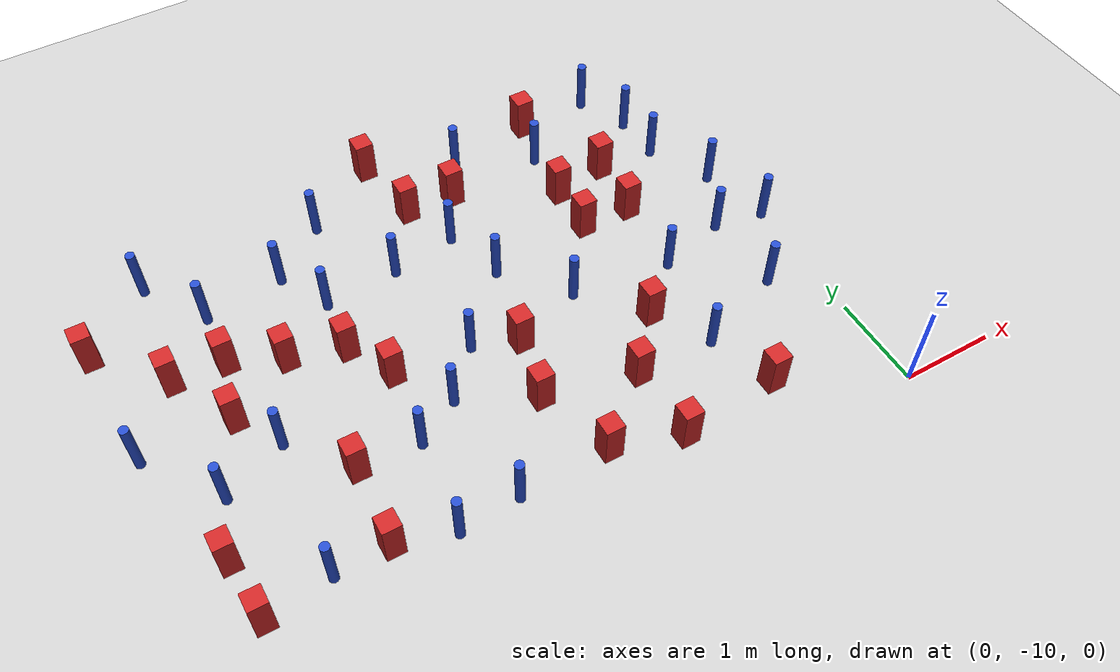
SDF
<sdf version="1.6">
 <world name="default">
  <model name="ground_plane">
   <static>1</static>
   <link name="link">
    <collision name="collision">
     <geometry><plane><normal>0 0 1</normal><size>100 100</size></plane></geometry>
     <surface><friction><ode><mu>100</mu><mu2>50</mu2></ode></friction></surface>
    </collision>
    <visual name="visual">
     <cast_shadows>0</cast_shadows>
     <geometry><plane><normal>0 0 1</normal><size>100 100</size></plane></geometry>
     <material>
      <ambient>1.0 1.0 1.0 1.0</ambient>
      <diffuse>0.8 0.8 0.8 1.0</diffuse>
      <specular>0.01 0.01 0.01 1.000000</specular>
     </material>
    </visual>
   </link>
  </model>
  <model name="square_post_obstacle0">
   <static>true</static>
   <pose>-3.1302615342 -7.7388249968 1.91545236811e-07 -7.35059704564e-06 1.12565212e-07 2.39332434364e-05</pose>
   <link name="link">
    <pose>0 0 0.25 0 -0 0</pose>
    <inertial>
     <mass>100</mass>
     <inertia>
      <ixx>0.166667</ixx>
      <ixy>0</ixy>
      <ixz>0</ixz>
      <iyy>0.166667</iyy>
      <iyz>0</iyz>
      <izz>0.166667</izz>
     </inertia>
    </inertial>
    <collision name="collision"><geometry><box><size>.2 .2 .5</size></box></geometry></collision>
    <visual name="visual">
     <geometry><box><size>.2 .2 .5</size></box></geometry>
     <material>
      <script><name>Gazebo/Red</name><uri>file://media/materials/scripts/gazebo.material</uri></script>
     </material>
    </visual>
   </link>
  </model>
  <model name="square_post_obstacle2">
   <static>true</static>
   <pose>-1.81622782125 -8.08868260093 1.91545236811e-07 -7.35059704564e-06 1.12565212e-07 2.39332434364e-05</pose>
   <link name="link">
    <pose>0 0 0.25 0 -0 0</pose>
    <inertial>
     <mass>100</mass>
     <inertia>
      <ixx>0.166667</ixx>
      <ixy>0</ixy>
      <ixz>0</ixz>
      <iyy>0.166667</iyy>
      <iyz>0</iyz>
      <izz>0.166667</izz>
     </inertia>
    </inertial>
    <collision name="collision"><geometry><box><size>.2 .2 .5</size></box></geometry></collision>
    <visual name="visual">
     <geometry><box><size>.2 .2 .5</size></box></geometry>
     <material>
      <script><name>Gazebo/Red</name><uri>file://media/materials/scripts/gazebo.material</uri></script>
     </material>
    </visual>
   </link>
  </model>
  <model name="square_post_obstacle6">
   <static>true</static>
   <pose>-1.77363090694 -6.15652895822 1.91545236811e-07 -7.35059704564e-06 1.12565212e-07 2.39332434364e-05</pose>
   <link name="link">
    <pose>0 0 0.25 0 -0 0</pose>
    <inertial>
     <mass>100</mass>
     <inertia>
      <ixx>0.166667</ixx>
      <ixy>0</ixy>
      <ixz>0</ixz>
      <iyy>0.166667</iyy>
      <iyz>0</iyz>
      <izz>0.166667</izz>
     </inertia>
    </inertial>
    <collision name="collision"><geometry><box><size>.2 .2 .5</size></box></geometry></collision>
    <visual name="visual">
     <geometry><box><size>.2 .2 .5</size></box></geometry>
     <material>
      <script><name>Gazebo/Red</name><uri>file://media/materials/scripts/gazebo.material</uri></script>
     </material>
    </visual>
   </link>
  </model>
  <model name="pole_obstacle10">
   <static>true</static>
   <pose>-6.90614893159 -7.19268532461 7.38925637345e-09 -8.47170692796e-08 1.24976764786e-08 -1.74513093032e-07</pose>
   <link name="link">
    <pose>0 0 0.3 0 -0 0</pose>
    <inertial>
     <mass>1</mass>
     <inertia><ixx>0.145833</ixx><ixy>0</ixy><ixz>0</ixz><iyy>0.145833</iyy><iyz>0</iyz><izz>0.125</izz></inertia>
    </inertial>
    <collision name="collision">
     <geometry><cylinder><radius>0.05</radius><length>.6</length></cylinder></geometry>
    </collision>
    <visual name="visual">
     <geometry><cylinder><radius>0.05</radius><length>.6</length></cylinder></geometry>
     <material>
      <script><name>Gazebo/Blue</name><uri>file://media/materials/scripts/gazebo.material</uri></script>
     </material>
    </visual>
   </link>
  </model>
  <model name="square_post_obstacle9">
   <static>true</static>
   <pose>-3.29297835384 -8.43089874461 1.91545236811e-07 -7.35059704564e-06 1.12565212e-07 2.39332434364e-05</pose>
   <link name="link">
    <pose>0 0 0.25 0 -0 0</pose>
    <inertial>
     <mass>100</mass>
     <inertia>
      <ixx>0.166667</ixx>
      <ixy>0</ixy>
      <ixz>0</ixz>
      <iyy>0.166667</iyy>
      <iyz>0</iyz>
      <izz>0.166667</izz>
     </inertia>
    </inertial>
    <collision name="collision"><geometry><box><size>.2 .2 .5</size></box></geometry></collision>
    <visual name="visual">
     <geometry><box><size>.2 .2 .5</size></box></geometry>
     <material>
      <script><name>Gazebo/Red</name><uri>file://media/materials/scripts/gazebo.material</uri></script>
     </material>
    </visual>
   </link>
  </model>
  <model name="pole_obstacle15">
   <static>true</static>
   <pose>-4.03835698467 -8.03222469664 7.38925637345e-09 -8.47170692796e-08 1.24976764752e-08 -1.74513093036e-07</pose>
   <link name="link">
    <pose>0 0 0.3 0 -0 0</pose>
    <inertial>
     <mass>1</mass>
     <inertia><ixx>0.145833</ixx><ixy>0</ixy><ixz>0</ixz><iyy>0.145833</iyy><iyz>0</iyz><izz>0.125</izz></inertia>
    </inertial>
    <collision name="collision">
     <geometry><cylinder><radius>0.05</radius><length>.6</length></cylinder></geometry>
    </collision>
    <visual name="visual">
     <geometry><cylinder><radius>0.05</radius><length>.6</length></cylinder></geometry>
     <material>
      <script><name>Gazebo/Blue</name><uri>file://media/materials/scripts/gazebo.material</uri></script>
     </material>
    </visual>
   </link>
  </model>
  <model name="pole_obstacle30">
   <static>true</static>
   <pose>-4.31219530646 -5.29686119449 7.38925637345e-09 -8.47170692796e-08 1.24976764786e-08 -1.74513093032e-07</pose>
   <link name="link">
    <pose>0 0 0.3 0 -0 0</pose>
    <inertial>
     <mass>1</mass>
     <inertia><ixx>0.145833</ixx><ixy>0</ixy><ixz>0</ixz><iyy>0.145833</iyy><iyz>0</iyz><izz>0.125</izz></inertia>
    </inertial>
    <collision name="collision">
     <geometry><cylinder><radius>0.05</radius><length>.6</length></cylinder></geometry>
    </collision>
    <visual name="visual">
     <geometry><cylinder><radius>0.05</radius><length>.6</length></cylinder></geometry>
     <material>
      <script><name>Gazebo/Blue</name><uri>file://media/materials/scripts/gazebo.material</uri></script>
     </material>
    </visual>
   </link>
  </model>
  <model name="square_post_obstacle27">
   <static>true</static>
   <pose>-2.31936967919 -8.66538422785 1.91545236811e-07 -7.35059704564e-06 1.12565212e-07 2.39332434364e-05</pose>
   <link name="link">
    <pose>0 0 0.25 0 -0 0</pose>
    <inertial>
     <mass>100</mass>
     <inertia>
      <ixx>0.166667</ixx>
      <ixy>0</ixy>
      <ixz>0</ixz>
      <iyy>0.166667</iyy>
      <iyz>0</iyz>
      <izz>0.166667</izz>
     </inertia>
    </inertial>
    <collision name="collision"><geometry><box><size>.2 .2 .5</size></box></geometry></collision>
    <visual name="visual">
     <geometry><box><size>.2 .2 .5</size></box></geometry>
     <material>
      <script><name>Gazebo/Red</name><uri>file://media/materials/scripts/gazebo.material</uri></script>
     </material>
    </visual>
   </link>
  </model>
  <model name="square_post_obstacle33">
   <static>true</static>
   <pose>-5.22461237389 -9.14606435724 1.91545236811e-07 -7.35059704564e-06 1.12565212e-07 2.39332434364e-05</pose>
   <link name="link">
    <pose>0 0 0.25 0 -0 0</pose>
    <inertial>
     <mass>100</mass>
     <inertia>
      <ixx>0.166667</ixx>
      <ixy>0</ixy>
      <ixz>0</ixz>
      <iyy>0.166667</iyy>
      <iyz>0</iyz>
      <izz>0.166667</izz>
     </inertia>
    </inertial>
    <collision name="collision"><geometry><box><size>.2 .2 .5</size></box></geometry></collision>
    <visual name="visual">
     <geometry><box><size>.2 .2 .5</size></box></geometry>
     <material>
      <script><name>Gazebo/Red</name><uri>file://media/materials/scripts/gazebo.material</uri></script>
     </material>
    </visual>
   </link>
  </model>
  <model name="pole_obstacle56">
   <static>true</static>
   <pose>-0.489232275687 -8.31665835181 7.38925637345e-09 -8.47170692799e-08 1.24976764918e-08 -1.74513093025e-07</pose>
   <link name="link">
    <pose>0 0 0.3 0 -0 0</pose>
    <inertial>
     <mass>1</mass>
     <inertia><ixx>0.145833</ixx><ixy>0</ixy><ixz>0</ixz><iyy>0.145833</iyy><iyz>0</iyz><izz>0.125</izz></inertia>
    </inertial>
    <collision name="collision">
     <geometry><cylinder><radius>0.05</radius><length>.6</length></cylinder></geometry>
    </collision>
    <visual name="visual">
     <geometry><cylinder><radius>0.05</radius><length>.6</length></cylinder></geometry>
     <material>
      <script><name>Gazebo/Blue</name><uri>file://media/materials/scripts/gazebo.material</uri></script>
     </material>
    </visual>
   </link>
  </model>
  <model name="pole_obstacle60">
   <static>true</static>
   <pose>-6.33742659952 -7.95636788864 7.38925637345e-09 -8.47170692798e-08 1.24976764934e-08 -1.74513093022e-07</pose>
   <link name="link">
    <pose>0 0 0.3 0 -0 0</pose>
    <inertial>
     <mass>1</mass>
     <inertia><ixx>0.145833</ixx><ixy>0</ixy><ixz>0</ixz><iyy>0.145833</iyy><iyz>0</iyz><izz>0.125</izz></inertia>
    </inertial>
    <collision name="collision">
     <geometry><cylinder><radius>0.05</radius><length>.6</length></cylinder></geometry>
    </collision>
    <visual name="visual">
     <geometry><cylinder><radius>0.05</radius><length>.6</length></cylinder></geometry>
     <material>
      <script><name>Gazebo/Blue</name><uri>file://media/materials/scripts/gazebo.material</uri></script>
     </material>
    </visual>
   </link>
  </model>
  <model name="square_post_obstacle46">
   <static>true</static>
   <pose>-3.02508521438 -9.25163519728 1.91545236811e-07 -7.35059704564e-06 1.12565212e-07 2.39332434364e-05</pose>
   <link name="link">
    <pose>0 0 0.25 0 -0 0</pose>
    <inertial>
     <mass>100</mass>
     <inertia>
      <ixx>0.166667</ixx>
      <ixy>0</ixy>
      <ixz>0</ixz>
      <iyy>0.166667</iyy>
      <iyz>0</iyz>
      <izz>0.166667</izz>
     </inertia>
    </inertial>
    <collision name="collision"><geometry><box><size>.2 .2 .5</size></box></geometry></collision>
    <visual name="visual">
     <geometry><box><size>.2 .2 .5</size></box></geometry>
     <material>
      <script><name>Gazebo/Red</name><uri>file://media/materials/scripts/gazebo.material</uri></script>
     </material>
    </visual>
   </link>
  </model>
  <model name="pole_obstacle68">
   <static>true</static>
   <pose>-1.27349486807 -7.60801841831 7.38925637345e-09 -8.47170692799e-08 1.24976765033e-08 -1.74513093018e-07</pose>
   <link name="link">
    <pose>0 0 0.3 0 -0 0</pose>
    <inertial>
     <mass>1</mass>
     <inertia><ixx>0.145833</ixx><ixy>0</ixy><ixz>0</ixz><iyy>0.145833</iyy><iyz>0</iyz><izz>0.125</izz></inertia>
    </inertial>
    <collision name="collision">
     <geometry><cylinder><radius>0.05</radius><length>.6</length></cylinder></geometry>
    </collision>
    <visual name="visual">
     <geometry><cylinder><radius>0.05</radius><length>.6</length></cylinder></geometry>
     <material>
      <script><name>Gazebo/Blue</name><uri>file://media/materials/scripts/gazebo.material</uri></script>
     </material>
    </visual>
   </link>
  </model>
  <model name="square_post_obstacle57">
   <static>true</static>
   <pose>-5.26083986196 -6.79283763205 1.91545236811e-07 -7.35059704564e-06 1.12565212e-07 2.39332434364e-05</pose>
   <link name="link">
    <pose>0 0 0.25 0 -0 0</pose>
    <inertial>
     <mass>100</mass>
     <inertia>
      <ixx>0.166667</ixx>
      <ixy>0</ixy>
      <ixz>0</ixz>
      <iyy>0.166667</iyy>
      <iyz>0</iyz>
      <izz>0.166667</izz>
     </inertia>
    </inertial>
    <collision name="collision"><geometry><box><size>.2 .2 .5</size></box></geometry></collision>
    <visual name="visual">
     <geometry><box><size>.2 .2 .5</size></box></geometry>
     <material>
      <script><name>Gazebo/Red</name><uri>file://media/materials/scripts/gazebo.material</uri></script>
     </material>
    </visual>
   </link>
  </model>
  <model name="square_post_obstacle69">
   <static>true</static>
   <pose>-6.95726311566 -5.82007495776 1.91545236811e-07 -7.35059704564e-06 1.12565212e-07 2.39332434364e-05</pose>
   <link name="link">
    <pose>0 0 0.25 0 -0 0</pose>
    <inertial>
     <mass>100</mass>
     <inertia>
      <ixx>0.166667</ixx>
      <ixy>0</ixy>
      <ixz>0</ixz>
      <iyy>0.166667</iyy>
      <iyz>0</iyz>
      <izz>0.166667</izz>
     </inertia>
    </inertial>
    <collision name="collision"><geometry><box><size>.2 .2 .5</size></box></geometry></collision>
    <visual name="visual">
     <geometry><box><size>.2 .2 .5</size></box></geometry>
     <material>
      <script><name>Gazebo/Red</name><uri>file://media/materials/scripts/gazebo.material</uri></script>
     </material>
    </visual>
   </link>
  </model>
  <model name="square_post_obstacle70">
   <static>true</static>
   <pose>-1.78889335081 -6.71604998827 1.91545236811e-07 -7.35059704564e-06 1.12565212e-07 2.39332434364e-05</pose>
   <link name="link">
    <pose>0 0 0.25 0 -0 0</pose>
    <inertial>
     <mass>100</mass>
     <inertia>
      <ixx>0.166667</ixx>
      <ixy>0</ixy>
      <ixz>0</ixz>
      <iyy>0.166667</iyy>
      <iyz>0</iyz>
      <izz>0.166667</izz>
     </inertia>
    </inertial>
    <collision name="collision"><geometry><box><size>.2 .2 .5</size></box></geometry></collision>
    <visual name="visual">
     <geometry><box><size>.2 .2 .5</size></box></geometry>
     <material>
      <script><name>Gazebo/Red</name><uri>file://media/materials/scripts/gazebo.material</uri></script>
     </material>
    </visual>
   </link>
  </model>
  <model name="square_post_obstacle72">
   <static>true</static>
   <pose>-5.96192441191 -7.20777350789 1.91545236811e-07 -7.35059704564e-06 1.12565212e-07 2.39332434364e-05</pose>
   <link name="link">
    <pose>0 0 0.25 0 -0 0</pose>
    <inertial>
     <mass>100</mass>
     <inertia>
      <ixx>0.166667</ixx>
      <ixy>0</ixy>
      <ixz>0</ixz>
      <iyy>0.166667</iyy>
      <iyz>0</iyz>
      <izz>0.166667</izz>
     </inertia>
    </inertial>
    <collision name="collision"><geometry><box><size>.2 .2 .5</size></box></geometry></collision>
    <visual name="visual">
     <geometry><box><size>.2 .2 .5</size></box></geometry>
     <material>
      <script><name>Gazebo/Red</name><uri>file://media/materials/scripts/gazebo.material</uri></script>
     </material>
    </visual>
   </link>
  </model>
  <model name="square_post_obstacle76">
   <static>true</static>
   <pose>-2.81576323974 -5.60928701518 1.91545236811e-07 -7.35059704564e-06 1.12565212e-07 2.39332434364e-05</pose>
   <link name="link">
    <pose>0 0 0.25 0 -0 0</pose>
    <inertial>
     <mass>100</mass>
     <inertia>
      <ixx>0.166667</ixx>
      <ixy>0</ixy>
      <ixz>0</ixz>
      <iyy>0.166667</iyy>
      <iyz>0</iyz>
      <izz>0.166667</izz>
     </inertia>
    </inertial>
    <collision name="collision"><geometry><box><size>.2 .2 .5</size></box></geometry></collision>
    <visual name="visual">
     <geometry><box><size>.2 .2 .5</size></box></geometry>
     <material>
      <script><name>Gazebo/Red</name><uri>file://media/materials/scripts/gazebo.material</uri></script>
     </material>
    </visual>
   </link>
  </model>
  <model name="pole_obstacle91">
   <static>true</static>
   <pose>-6.21507940638 -5.20797603912 7.38925637345e-09 -8.47170692796e-08 1.24976764786e-08 -1.74513093032e-07</pose>
   <link name="link">
    <pose>0 0 0.3 0 -0 0</pose>
    <inertial>
     <mass>1</mass>
     <inertia><ixx>0.145833</ixx><ixy>0</ixy><ixz>0</ixz><iyy>0.145833</iyy><iyz>0</iyz><izz>0.125</izz></inertia>
    </inertial>
    <collision name="collision">
     <geometry><cylinder><radius>0.05</radius><length>.6</length></cylinder></geometry>
    </collision>
    <visual name="visual">
     <geometry><cylinder><radius>0.05</radius><length>.6</length></cylinder></geometry>
     <material>
      <script><name>Gazebo/Blue</name><uri>file://media/materials/scripts/gazebo.material</uri></script>
     </material>
    </visual>
   </link>
  </model>
  <model name="pole_obstacle92">
   <static>true</static>
   <pose>0.0188790153939 -7.50853557784 7.38925637345e-09 -8.471706928e-08 1.24976765089e-08 -1.74513093016e-07</pose>
   <link name="link">
    <pose>0 0 0.3 0 -0 0</pose>
    <inertial>
     <mass>1</mass>
     <inertia><ixx>0.145833</ixx><ixy>0</ixy><ixz>0</ixz><iyy>0.145833</iyy><iyz>0</iyz><izz>0.125</izz></inertia>
    </inertial>
    <collision name="collision">
     <geometry><cylinder><radius>0.05</radius><length>.6</length></cylinder></geometry>
    </collision>
    <visual name="visual">
     <geometry><cylinder><radius>0.05</radius><length>.6</length></cylinder></geometry>
     <material>
      <script><name>Gazebo/Blue</name><uri>file://media/materials/scripts/gazebo.material</uri></script>
     </material>
    </visual>
   </link>
  </model>
  <model name="pole_obstacle100">
   <static>true</static>
   <pose>-3.10965192377 -6.14967714935 7.38925637345e-09 -8.47170692794e-08 1.24976764468e-08 -1.7451309304e-07</pose>
   <link name="link">
    <pose>0 0 0.3 0 -0 0</pose>
    <inertial>
     <mass>1</mass>
     <inertia><ixx>0.145833</ixx><ixy>0</ixy><ixz>0</ixz><iyy>0.145833</iyy><iyz>0</iyz><izz>0.125</izz></inertia>
    </inertial>
    <collision name="collision">
     <geometry><cylinder><radius>0.05</radius><length>.6</length></cylinder></geometry>
    </collision>
    <visual name="visual">
     <geometry><cylinder><radius>0.05</radius><length>.6</length></cylinder></geometry>
     <material>
      <script><name>Gazebo/Blue</name><uri>file://media/materials/scripts/gazebo.material</uri></script>
     </material>
    </visual>
   </link>
  </model>
  <model name="square_post_obstacle102">
   <static>true</static>
   <pose>-5.17163753735 -8.28237469445 1.91545236811e-07 -7.35059704564e-06 1.12565212e-07 2.39332434364e-05</pose>
   <link name="link">
    <pose>0 0 0.25 0 -0 0</pose>
    <inertial>
     <mass>100</mass>
     <inertia>
      <ixx>0.166667</ixx>
      <ixy>0</ixy>
      <ixz>0</ixz>
      <iyy>0.166667</iyy>
      <iyz>0</iyz>
      <izz>0.166667</izz>
     </inertia>
    </inertial>
    <collision name="collision"><geometry><box><size>.2 .2 .5</size></box></geometry></collision>
    <visual name="visual">
     <geometry><box><size>.2 .2 .5</size></box></geometry>
     <material>
      <script><name>Gazebo/Red</name><uri>file://media/materials/scripts/gazebo.material</uri></script>
     </material>
    </visual>
   </link>
  </model>
  <model name="square_post_obstacle107">
   <static>true</static>
   <pose>-4.68585353089 -6.96801714703 1.91545236811e-07 -7.35059704564e-06 1.12565212e-07 2.39332434364e-05</pose>
   <link name="link">
    <pose>0 0 0.25 0 -0 0</pose>
    <inertial>
     <mass>100</mass>
     <inertia>
      <ixx>0.166667</ixx>
      <ixy>0</ixy>
      <ixz>0</ixz>
      <iyy>0.166667</iyy>
      <iyz>0</iyz>
      <izz>0.166667</izz>
     </inertia>
    </inertial>
    <collision name="collision"><geometry><box><size>.2 .2 .5</size></box></geometry></collision>
    <visual name="visual">
     <geometry><box><size>.2 .2 .5</size></box></geometry>
     <material>
      <script><name>Gazebo/Red</name><uri>file://media/materials/scripts/gazebo.material</uri></script>
     </material>
    </visual>
   </link>
  </model>
  <model name="square_post_obstacle109">
   <static>true</static>
   <pose>-1.24037652575 -6.7336751906 1.91545236811e-07 -7.35059704564e-06 1.12565212e-07 2.39332434364e-05</pose>
   <link name="link">
    <pose>0 0 0.25 0 -0 0</pose>
    <inertial>
     <mass>100</mass>
     <inertia>
      <ixx>0.166667</ixx>
      <ixy>0</ixy>
      <ixz>0</ixz>
      <iyy>0.166667</iyy>
      <iyz>0</iyz>
      <izz>0.166667</izz>
     </inertia>
    </inertial>
    <collision name="collision"><geometry><box><size>.2 .2 .5</size></box></geometry></collision>
    <visual name="visual">
     <geometry><box><size>.2 .2 .5</size></box></geometry>
     <material>
      <script><name>Gazebo/Red</name><uri>file://media/materials/scripts/gazebo.material</uri></script>
     </material>
    </visual>
   </link>
  </model>
  <model name="pole_obstacle116">
   <static>true</static>
   <pose>-2.55515823076 -5.17450402332 7.38925637345e-09 -8.47170692798e-08 1.24976765033e-08 -1.74513093019e-07</pose>
   <link name="link">
    <pose>0 0 0.3 0 -0 0</pose>
    <inertial>
     <mass>1</mass>
     <inertia><ixx>0.145833</ixx><ixy>0</ixy><ixz>0</ixz><iyy>0.145833</iyy><iyz>0</iyz><izz>0.125</izz></inertia>
    </inertial>
    <collision name="collision">
     <geometry><cylinder><radius>0.05</radius><length>.6</length></cylinder></geometry>
    </collision>
    <visual name="visual">
     <geometry><cylinder><radius>0.05</radius><length>.6</length></cylinder></geometry>
     <material>
      <script><name>Gazebo/Blue</name><uri>file://media/materials/scripts/gazebo.material</uri></script>
     </material>
    </visual>
   </link>
  </model>
  <model name="square_post_obstacle117">
   <static>true</static>
   <pose>-2.31032814289 -9.48010830313 1.91545236811e-07 -7.35059704564e-06 1.12565212e-07 2.39332434364e-05</pose>
   <link name="link">
    <pose>0 0 0.25 0 -0 0</pose>
    <inertial>
     <mass>100</mass>
     <inertia>
      <ixx>0.166667</ixx>
      <ixy>0</ixy>
      <ixz>0</ixz>
      <iyy>0.166667</iyy>
      <iyz>0</iyz>
      <izz>0.166667</izz>
     </inertia>
    </inertial>
    <collision name="collision"><geometry><box><size>.2 .2 .5</size></box></geometry></collision>
    <visual name="visual">
     <geometry><box><size>.2 .2 .5</size></box></geometry>
     <material>
      <script><name>Gazebo/Red</name><uri>file://media/materials/scripts/gazebo.material</uri></script>
     </material>
    </visual>
   </link>
  </model>
  <model name="square_post_obstacle119">
   <static>true</static>
   <pose>-6.48217700357 -9.24167593766 1.91545236811e-07 -7.35059704564e-06 1.12565212e-07 2.39332434364e-05</pose>
   <link name="link">
    <pose>0 0 0.25 0 -0 0</pose>
    <inertial>
     <mass>100</mass>
     <inertia>
      <ixx>0.166667</ixx>
      <ixy>0</ixy>
      <ixz>0</ixz>
      <iyy>0.166667</iyy>
      <iyz>0</iyz>
      <izz>0.166667</izz>
     </inertia>
    </inertial>
    <collision name="collision"><geometry><box><size>.2 .2 .5</size></box></geometry></collision>
    <visual name="visual">
     <geometry><box><size>.2 .2 .5</size></box></geometry>
     <material>
      <script><name>Gazebo/Red</name><uri>file://media/materials/scripts/gazebo.material</uri></script>
     </material>
    </visual>
   </link>
  </model>
  <model name="pole_obstacle127">
   <static>true</static>
   <pose>-0.546708033277 -5.55857607316 7.38925637345e-09 -8.471706928e-08 1.24976765117e-08 -1.74513093013e-07</pose>
   <link name="link">
    <pose>0 0 0.3 0 -0 0</pose>
    <inertial>
     <mass>1</mass>
     <inertia><ixx>0.145833</ixx><ixy>0</ixy><ixz>0</ixz><iyy>0.145833</iyy><iyz>0</iyz><izz>0.125</izz></inertia>
    </inertial>
    <collision name="collision">
     <geometry><cylinder><radius>0.05</radius><length>.6</length></cylinder></geometry>
    </collision>
    <visual name="visual">
     <geometry><cylinder><radius>0.05</radius><length>.6</length></cylinder></geometry>
     <material>
      <script><name>Gazebo/Blue</name><uri>file://media/materials/scripts/gazebo.material</uri></script>
     </material>
    </visual>
   </link>
  </model>
  <model name="square_post_obstacle124">
   <static>true</static>
   <pose>-1.17713840485 -6.0552376974 1.91545236811e-07 -7.35059704564e-06 1.12565212e-07 2.39332434364e-05</pose>
   <link name="link">
    <pose>0 0 0.25 0 -0 0</pose>
    <inertial>
     <mass>100</mass>
     <inertia>
      <ixx>0.166667</ixx>
      <ixy>0</ixy>
      <ixz>0</ixz>
      <iyy>0.166667</iyy>
      <iyz>0</iyz>
      <izz>0.166667</izz>
     </inertia>
    </inertial>
    <collision name="collision"><geometry><box><size>.2 .2 .5</size></box></geometry></collision>
    <visual name="visual">
     <geometry><box><size>.2 .2 .5</size></box></geometry>
     <material>
      <script><name>Gazebo/Red</name><uri>file://media/materials/scripts/gazebo.material</uri></script>
     </material>
    </visual>
   </link>
  </model>
  <model name="pole_obstacle131">
   <static>true</static>
   <pose>-3.8253964604 -6.2739029245 7.38925637345e-09 -8.47170692798e-08 1.24976765033e-08 -1.74513093019e-07</pose>
   <link name="link">
    <pose>0 0 0.3 0 -0 0</pose>
    <inertial>
     <mass>1</mass>
     <inertia><ixx>0.145833</ixx><ixy>0</ixy><ixz>0</ixz><iyy>0.145833</iyy><iyz>0</iyz><izz>0.125</izz></inertia>
    </inertial>
    <collision name="collision">
     <geometry><cylinder><radius>0.05</radius><length>.6</length></cylinder></geometry>
    </collision>
    <visual name="visual">
     <geometry><cylinder><radius>0.05</radius><length>.6</length></cylinder></geometry>
     <material>
      <script><name>Gazebo/Blue</name><uri>file://media/materials/scripts/gazebo.material</uri></script>
     </material>
    </visual>
   </link>
  </model>
  <model name="square_post_obstacle130">
   <static>true</static>
   <pose>-1.61041433889 -5.03130287131 1.91545236811e-07 -7.35059704564e-06 1.12565212e-07 2.39332434364e-05</pose>
   <link name="link">
    <pose>0 0 0.25 0 -0 0</pose>
    <inertial>
     <mass>100</mass>
     <inertia>
      <ixx>0.166667</ixx>
      <ixy>0</ixy>
      <ixz>0</ixz>
      <iyy>0.166667</iyy>
      <iyz>0</iyz>
      <izz>0.166667</izz>
     </inertia>
    </inertial>
    <collision name="collision"><geometry><box><size>.2 .2 .5</size></box></geometry></collision>
    <visual name="visual">
     <geometry><box><size>.2 .2 .5</size></box></geometry>
     <material>
      <script><name>Gazebo/Red</name><uri>file://media/materials/scripts/gazebo.material</uri></script>
     </material>
    </visual>
   </link>
  </model>
  <model name="square_post_obstacle131">
   <static>true</static>
   <pose>-4.4243535241 -7.47491078336 1.91545236811e-07 -7.35059704564e-06 1.12565212e-07 2.39332434364e-05</pose>
   <link name="link">
    <pose>0 0 0.25 0 -0 0</pose>
    <inertial>
     <mass>100</mass>
     <inertia>
      <ixx>0.166667</ixx>
      <ixy>0</ixy>
      <ixz>0</ixz>
      <iyy>0.166667</iyy>
      <iyz>0</iyz>
      <izz>0.166667</izz>
     </inertia>
    </inertial>
    <collision name="collision"><geometry><box><size>.2 .2 .5</size></box></geometry></collision>
    <visual name="visual">
     <geometry><box><size>.2 .2 .5</size></box></geometry>
     <material>
      <script><name>Gazebo/Red</name><uri>file://media/materials/scripts/gazebo.material</uri></script>
     </material>
    </visual>
   </link>
  </model>
  <model name="pole_obstacle133">
   <static>true</static>
   <pose>-1.45972987543 -8.68214433756 7.38925637345e-09 -8.47170692798e-08 1.24976764881e-08 -1.74513093027e-07</pose>
   <link name="link">
    <pose>0 0 0.3 0 -0 0</pose>
    <inertial>
     <mass>1</mass>
     <inertia><ixx>0.145833</ixx><ixy>0</ixy><ixz>0</ixz><iyy>0.145833</iyy><iyz>0</iyz><izz>0.125</izz></inertia>
    </inertial>
    <collision name="collision">
     <geometry><cylinder><radius>0.05</radius><length>.6</length></cylinder></geometry>
    </collision>
    <visual name="visual">
     <geometry><cylinder><radius>0.05</radius><length>.6</length></cylinder></geometry>
     <material>
      <script><name>Gazebo/Blue</name><uri>file://media/materials/scripts/gazebo.material</uri></script>
     </material>
    </visual>
   </link>
  </model>
  <model name="pole_obstacle146">
   <static>true</static>
   <pose>-2.907948996 -6.81004477598 7.38925637345e-09 -8.47170692798e-08 1.24976765033e-08 -1.74513093019e-07</pose>
   <link name="link">
    <pose>0 0 0.3 0 -0 0</pose>
    <inertial>
     <mass>1</mass>
     <inertia><ixx>0.145833</ixx><ixy>0</ixy><ixz>0</ixz><iyy>0.145833</iyy><iyz>0</iyz><izz>0.125</izz></inertia>
    </inertial>
    <collision name="collision">
     <geometry><cylinder><radius>0.05</radius><length>.6</length></cylinder></geometry>
    </collision>
    <visual name="visual">
     <geometry><cylinder><radius>0.05</radius><length>.6</length></cylinder></geometry>
     <material>
      <script><name>Gazebo/Blue</name><uri>file://media/materials/scripts/gazebo.material</uri></script>
     </material>
    </visual>
   </link>
  </model>
  <model name="pole_obstacle147">
   <static>true</static>
   <pose>-3.59483648586 -7.54188067465 7.38925637345e-09 -8.47170692798e-08 1.24976765033e-08 -1.74513093019e-07</pose>
   <link name="link">
    <pose>0 0 0.3 0 -0 0</pose>
    <inertial>
     <mass>1</mass>
     <inertia><ixx>0.145833</ixx><ixy>0</ixy><ixz>0</ixz><iyy>0.145833</iyy><iyz>0</iyz><izz>0.125</izz></inertia>
    </inertial>
    <collision name="collision">
     <geometry><cylinder><radius>0.05</radius><length>.6</length></cylinder></geometry>
    </collision>
    <visual name="visual">
     <geometry><cylinder><radius>0.05</radius><length>.6</length></cylinder></geometry>
     <material>
      <script><name>Gazebo/Blue</name><uri>file://media/materials/scripts/gazebo.material</uri></script>
     </material>
    </visual>
   </link>
  </model>
  <model name="pole_obstacle148">
   <static>true</static>
   <pose>-5.76995344315 -5.88573587536 7.38925637345e-09 -8.47170692796e-08 1.24976764786e-08 -1.74513093032e-07</pose>
   <link name="link">
    <pose>0 0 0.3 0 -0 0</pose>
    <inertial>
     <mass>1</mass>
     <inertia><ixx>0.145833</ixx><ixy>0</ixy><ixz>0</ixz><iyy>0.145833</iyy><iyz>0</iyz><izz>0.125</izz></inertia>
    </inertial>
    <collision name="collision">
     <geometry><cylinder><radius>0.05</radius><length>.6</length></cylinder></geometry>
    </collision>
    <visual name="visual">
     <geometry><cylinder><radius>0.05</radius><length>.6</length></cylinder></geometry>
     <material>
      <script><name>Gazebo/Blue</name><uri>file://media/materials/scripts/gazebo.material</uri></script>
     </material>
    </visual>
   </link>
  </model>
  <model name="square_post_obstacle142">
   <static>true</static>
   <pose>-3.3532466607 -5.58649277229 1.91545236811e-07 -7.35059704564e-06 1.12565212e-07 2.39332434364e-05</pose>
   <link name="link">
    <pose>0 0 0.25 0 -0 0</pose>
    <inertial>
     <mass>100</mass>
     <inertia>
      <ixx>0.166667</ixx>
      <ixy>0</ixy>
      <ixz>0</ixz>
      <iyy>0.166667</iyy>
      <iyz>0</iyz>
      <izz>0.166667</izz>
     </inertia>
    </inertial>
    <collision name="collision"><geometry><box><size>.2 .2 .5</size></box></geometry></collision>
    <visual name="visual">
     <geometry><box><size>.2 .2 .5</size></box></geometry>
     <material>
      <script><name>Gazebo/Red</name><uri>file://media/materials/scripts/gazebo.material</uri></script>
     </material>
    </visual>
   </link>
  </model>
  <model name="pole_obstacle150">
   <static>true</static>
   <pose>-2.35545851418 -7.46341749565 7.38925637345e-09 -8.47170692798e-08 1.24976765033e-08 -1.74513093019e-07</pose>
   <link name="link">
    <pose>0 0 0.3 0 -0 0</pose>
    <inertial>
     <mass>1</mass>
     <inertia><ixx>0.145833</ixx><ixy>0</ixy><ixz>0</ixz><iyy>0.145833</iyy><iyz>0</iyz><izz>0.125</izz></inertia>
    </inertial>
    <collision name="collision">
     <geometry><cylinder><radius>0.05</radius><length>.6</length></cylinder></geometry>
    </collision>
    <visual name="visual">
     <geometry><cylinder><radius>0.05</radius><length>.6</length></cylinder></geometry>
     <material>
      <script><name>Gazebo/Blue</name><uri>file://media/materials/scripts/gazebo.material</uri></script>
     </material>
    </visual>
   </link>
  </model>
  <model name="pole_obstacle152">
   <static>true</static>
   <pose>-5.66765450671 -7.66582359645 7.38925637345e-09 -8.47170692796e-08 1.24976764786e-08 -1.74513093032e-07</pose>
   <link name="link">
    <pose>0 0 0.3 0 -0 0</pose>
    <inertial>
     <mass>1</mass>
     <inertia><ixx>0.145833</ixx><ixy>0</ixy><ixz>0</ixz><iyy>0.145833</iyy><iyz>0</iyz><izz>0.125</izz></inertia>
    </inertial>
    <collision name="collision">
     <geometry><cylinder><radius>0.05</radius><length>.6</length></cylinder></geometry>
    </collision>
    <visual name="visual">
     <geometry><cylinder><radius>0.05</radius><length>.6</length></cylinder></geometry>
     <material>
      <script><name>Gazebo/Blue</name><uri>file://media/materials/scripts/gazebo.material</uri></script>
     </material>
    </visual>
   </link>
  </model>
  <model name="pole_obstacle164">
   <static>true</static>
   <pose>-0.183278225207 -6.76034384943 7.38925637345e-09 -8.47170692799e-08 1.24976765068e-08 -1.74513093018e-07</pose>
   <link name="link">
    <pose>0 0 0.3 0 -0 0</pose>
    <inertial>
     <mass>1</mass>
     <inertia><ixx>0.145833</ixx><ixy>0</ixy><ixz>0</ixz><iyy>0.145833</iyy><iyz>0</iyz><izz>0.125</izz></inertia>
    </inertial>
    <collision name="collision">
     <geometry><cylinder><radius>0.05</radius><length>.6</length></cylinder></geometry>
    </collision>
    <visual name="visual">
     <geometry><cylinder><radius>0.05</radius><length>.6</length></cylinder></geometry>
     <material>
      <script><name>Gazebo/Blue</name><uri>file://media/materials/scripts/gazebo.material</uri></script>
     </material>
    </visual>
   </link>
  </model>
  <model name="square_post_obstacle163">
   <static>true</static>
   <pose>-1.22885349989 -9.37918921194 1.91545236811e-07 -7.35059704564e-06 1.12565212e-07 2.39332434364e-05</pose>
   <link name="link">
    <pose>0 0 0.25 0 -0 0</pose>
    <inertial>
     <mass>100</mass>
     <inertia>
      <ixx>0.166667</ixx>
      <ixy>0</ixy>
      <ixz>0</ixz>
      <iyy>0.166667</iyy>
      <iyz>0</iyz>
      <izz>0.166667</izz>
     </inertia>
    </inertial>
    <collision name="collision"><geometry><box><size>.2 .2 .5</size></box></geometry></collision>
    <visual name="visual">
     <geometry><box><size>.2 .2 .5</size></box></geometry>
     <material>
      <script><name>Gazebo/Red</name><uri>file://media/materials/scripts/gazebo.material</uri></script>
     </material>
    </visual>
   </link>
  </model>
  <model name="pole_obstacle168">
   <static>true</static>
   <pose>-5.79587141717 -9.15315992803 7.38925637345e-09 -8.471706928e-08 1.24976765081e-08 -1.74513093015e-07</pose>
   <link name="link">
    <pose>0 0 0.3 0 -0 0</pose>
    <inertial>
     <mass>1</mass>
     <inertia><ixx>0.145833</ixx><ixy>0</ixy><ixz>0</ixz><iyy>0.145833</iyy><iyz>0</iyz><izz>0.125</izz></inertia>
    </inertial>
    <collision name="collision">
     <geometry><cylinder><radius>0.05</radius><length>.6</length></cylinder></geometry>
    </collision>
    <visual name="visual">
     <geometry><cylinder><radius>0.05</radius><length>.6</length></cylinder></geometry>
     <material>
      <script><name>Gazebo/Blue</name><uri>file://media/materials/scripts/gazebo.material</uri></script>
     </material>
    </visual>
   </link>
  </model>
  <model name="square_post_obstacle172">
   <static>true</static>
   <pose>-6.34517574255 -6.49787862826 1.91545236811e-07 -7.35059704564e-06 1.12565212e-07 2.39332434364e-05</pose>
   <link name="link">
    <pose>0 0 0.25 0 -0 0</pose>
    <inertial>
     <mass>100</mass>
     <inertia>
      <ixx>0.166667</ixx>
      <ixy>0</ixy>
      <ixz>0</ixz>
      <iyy>0.166667</iyy>
      <iyz>0</iyz>
      <izz>0.166667</izz>
     </inertia>
    </inertial>
    <collision name="collision"><geometry><box><size>.2 .2 .5</size></box></geometry></collision>
    <visual name="visual">
     <geometry><box><size>.2 .2 .5</size></box></geometry>
     <material>
      <script><name>Gazebo/Red</name><uri>file://media/materials/scripts/gazebo.material</uri></script>
     </material>
    </visual>
   </link>
  </model>
  <model name="square_post_obstacle176">
   <static>true</static>
   <pose>-3.48977856941 -4.76890282702 1.91545236811e-07 -7.35059704564e-06 1.12565212e-07 2.39332434364e-05</pose>
   <link name="link">
    <pose>0 0 0.25 0 -0 0</pose>
    <inertial>
     <mass>100</mass>
     <inertia>
      <ixx>0.166667</ixx>
      <ixy>0</ixy>
      <ixz>0</ixz>
      <iyy>0.166667</iyy>
      <iyz>0</iyz>
      <izz>0.166667</izz>
     </inertia>
    </inertial>
    <collision name="collision"><geometry><box><size>.2 .2 .5</size></box></geometry></collision>
    <visual name="visual">
     <geometry><box><size>.2 .2 .5</size></box></geometry>
     <material>
      <script><name>Gazebo/Red</name><uri>file://media/materials/scripts/gazebo.material</uri></script>
     </material>
    </visual>
   </link>
  </model>
  <model name="pole_obstacle181">
   <static>true</static>
   <pose>-1.73685879288 -5.55089362119 7.38925637345e-09 -8.47170692799e-08 1.24976765033e-08 -1.74513093018e-07</pose>
   <link name="link">
    <pose>0 0 0.3 0 -0 0</pose>
    <inertial>
     <mass>1</mass>
     <inertia><ixx>0.145833</ixx><ixy>0</ixy><ixz>0</ixz><iyy>0.145833</iyy><iyz>0</iyz><izz>0.125</izz></inertia>
    </inertial>
    <collision name="collision">
     <geometry><cylinder><radius>0.05</radius><length>.6</length></cylinder></geometry>
    </collision>
    <visual name="visual">
     <geometry><cylinder><radius>0.05</radius><length>.6</length></cylinder></geometry>
     <material>
      <script><name>Gazebo/Blue</name><uri>file://media/materials/scripts/gazebo.material</uri></script>
     </material>
    </visual>
   </link>
  </model>
  <model name="pole_obstacle182">
   <static>true</static>
   <pose>-0.795388762074 -5.0070660357 7.38925637345e-09 -8.471706928e-08 1.24976765086e-08 -1.74513093015e-07</pose>
   <link name="link">
    <pose>0 0 0.3 0 -0 0</pose>
    <inertial>
     <mass>1</mass>
     <inertia><ixx>0.145833</ixx><ixy>0</ixy><ixz>0</ixz><iyy>0.145833</iyy><iyz>0</iyz><izz>0.125</izz></inertia>
    </inertial>
    <collision name="collision">
     <geometry><cylinder><radius>0.05</radius><length>.6</length></cylinder></geometry>
    </collision>
    <visual name="visual">
     <geometry><cylinder><radius>0.05</radius><length>.6</length></cylinder></geometry>
     <material>
      <script><name>Gazebo/Blue</name><uri>file://media/materials/scripts/gazebo.material</uri></script>
     </material>
    </visual>
   </link>
  </model>
  <model name="square_post_obstacle192">
   <static>true</static>
   <pose>-5.79366412052 -6.5358535835 1.91545236811e-07 -7.35059704564e-06 1.12565212e-07 2.39332434364e-05</pose>
   <link name="link">
    <pose>0 0 0.25 0 -0 0</pose>
    <inertial>
     <mass>100</mass>
     <inertia>
      <ixx>0.166667</ixx>
      <ixy>0</ixy>
      <ixz>0</ixz>
      <iyy>0.166667</iyy>
      <iyz>0</iyz>
      <izz>0.166667</izz>
     </inertia>
    </inertial>
    <collision name="collision"><geometry><box><size>.2 .2 .5</size></box></geometry></collision>
    <visual name="visual">
     <geometry><box><size>.2 .2 .5</size></box></geometry>
     <material>
      <script><name>Gazebo/Red</name><uri>file://media/materials/scripts/gazebo.material</uri></script>
     </material>
    </visual>
   </link>
  </model>
  <model name="pole_obstacle190">
   <static>true</static>
   <pose>-0.526291988178 -7.41115233968 7.38925637345e-09 -8.471706928e-08 1.24976765117e-08 -1.74513093013e-07</pose>
   <link name="link">
    <pose>0 0 0.3 0 -0 0</pose>
    <inertial>
     <mass>1</mass>
     <inertia><ixx>0.145833</ixx><ixy>0</ixy><ixz>0</ixz><iyy>0.145833</iyy><iyz>0</iyz><izz>0.125</izz></inertia>
    </inertial>
    <collision name="collision">
     <geometry><cylinder><radius>0.05</radius><length>.6</length></cylinder></geometry>
    </collision>
    <visual name="visual">
     <geometry><cylinder><radius>0.05</radius><length>.6</length></cylinder></geometry>
     <material>
      <script><name>Gazebo/Blue</name><uri>file://media/materials/scripts/gazebo.material</uri></script>
     </material>
    </visual>
   </link>
  </model>
  <model name="pole_obstacle191">
   <static>true</static>
   <pose>-4.91628504594 -5.77458850452 7.38925637345e-09 -8.47170692796e-08 1.24976764786e-08 -1.74513093032e-07</pose>
   <link name="link">
    <pose>0 0 0.3 0 -0 0</pose>
    <inertial>
     <mass>1</mass>
     <inertia><ixx>0.145833</ixx><ixy>0</ixy><ixz>0</ixz><iyy>0.145833</iyy><iyz>0</iyz><izz>0.125</izz></inertia>
    </inertial>
    <collision name="collision">
     <geometry><cylinder><radius>0.05</radius><length>.6</length></cylinder></geometry>
    </collision>
    <visual name="visual">
     <geometry><cylinder><radius>0.05</radius><length>.6</length></cylinder></geometry>
     <material>
      <script><name>Gazebo/Blue</name><uri>file://media/materials/scripts/gazebo.material</uri></script>
     </material>
    </visual>
   </link>
  </model>
  <model name="square_post_obstacle202">
   <static>true</static>
   <pose>-6.53907554551 -8.57979856905 1.91545236811e-07 -7.35059704564e-06 1.12565212e-07 2.39332434364e-05</pose>
   <link name="link">
    <pose>0 0 0.25 0 -0 0</pose>
    <inertial>
     <mass>100</mass>
     <inertia>
      <ixx>0.166667</ixx>
      <ixy>0</ixy>
      <ixz>0</ixz>
      <iyy>0.166667</iyy>
      <iyz>0</iyz>
      <izz>0.166667</izz>
     </inertia>
    </inertial>
    <collision name="collision"><geometry><box><size>.2 .2 .5</size></box></geometry></collision>
    <visual name="visual">
     <geometry><box><size>.2 .2 .5</size></box></geometry>
     <material>
      <script><name>Gazebo/Red</name><uri>file://media/materials/scripts/gazebo.material</uri></script>
     </material>
    </visual>
   </link>
  </model>
  <model name="pole_obstacle199">
   <static>true</static>
   <pose>-4.63931518443 -9.32382417422 7.38925637345e-09 -8.471706928e-08 1.24976765081e-08 -1.74513093015e-07</pose>
   <link name="link">
    <pose>0 0 0.3 0 -0 0</pose>
    <inertial>
     <mass>1</mass>
     <inertia><ixx>0.145833</ixx><ixy>0</ixy><ixz>0</ixz><iyy>0.145833</iyy><iyz>0</iyz><izz>0.125</izz></inertia>
    </inertial>
    <collision name="collision">
     <geometry><cylinder><radius>0.05</radius><length>.6</length></cylinder></geometry>
    </collision>
    <visual name="visual">
     <geometry><cylinder><radius>0.05</radius><length>.6</length></cylinder></geometry>
     <material>
      <script><name>Gazebo/Blue</name><uri>file://media/materials/scripts/gazebo.material</uri></script>
     </material>
    </visual>
   </link>
  </model>
  <model name="pole_obstacle200">
   <static>true</static>
   <pose>-0.5204133371 -6.09458072614 7.38925637345e-09 -8.471706928e-08 1.24976765117e-08 -1.74513093013e-07</pose>
   <link name="link">
    <pose>0 0 0.3 0 -0 0</pose>
    <inertial>
     <mass>1</mass>
     <inertia><ixx>0.145833</ixx><ixy>0</ixy><ixz>0</ixz><iyy>0.145833</iyy><iyz>0</iyz><izz>0.125</izz></inertia>
    </inertial>
    <collision name="collision">
     <geometry><cylinder><radius>0.05</radius><length>.6</length></cylinder></geometry>
    </collision>
    <visual name="visual">
     <geometry><cylinder><radius>0.05</radius><length>.6</length></cylinder></geometry>
     <material>
      <script><name>Gazebo/Blue</name><uri>file://media/materials/scripts/gazebo.material</uri></script>
     </material>
    </visual>
   </link>
  </model>
  <model name="pole_obstacle205">
   <static>true</static>
   <pose>-4.62860984096 -6.32917284182 7.38925637345e-09 -8.47170692796e-08 1.24976764786e-08 -1.74513093032e-07</pose>
   <link name="link">
    <pose>0 0 0.3 0 -0 0</pose>
    <inertial>
     <mass>1</mass>
     <inertia><ixx>0.145833</ixx><ixy>0</ixy><ixz>0</ixz><iyy>0.145833</iyy><iyz>0</iyz><izz>0.125</izz></inertia>
    </inertial>
    <collision name="collision">
     <geometry><cylinder><radius>0.05</radius><length>.6</length></cylinder></geometry>
    </collision>
    <visual name="visual">
     <geometry><cylinder><radius>0.05</radius><length>.6</length></cylinder></geometry>
     <material>
      <script><name>Gazebo/Blue</name><uri>file://media/materials/scripts/gazebo.material</uri></script>
     </material>
    </visual>
   </link>
  </model>
  <model name="pole_obstacle211">
   <static>true</static>
   <pose>-4.51815740479 -8.31481883814 7.38925637345e-09 -8.471706928e-08 1.24976765081e-08 -1.74513093015e-07</pose>
   <link name="link">
    <pose>0 0 0.3 0 -0 0</pose>
    <inertial>
     <mass>1</mass>
     <inertia><ixx>0.145833</ixx><ixy>0</ixy><ixz>0</ixz><iyy>0.145833</iyy><iyz>0</iyz><izz>0.125</izz></inertia>
    </inertial>
    <collision name="collision">
     <geometry><cylinder><radius>0.05</radius><length>.6</length></cylinder></geometry>
    </collision>
    <visual name="visual">
     <geometry><cylinder><radius>0.05</radius><length>.6</length></cylinder></geometry>
     <material>
      <script><name>Gazebo/Blue</name><uri>file://media/materials/scripts/gazebo.material</uri></script>
     </material>
    </visual>
   </link>
  </model>
  <model name="pole_obstacle212">
   <static>true</static>
   <pose>-3.9921802141 -9.27569318882 7.38925637345e-09 -8.47170692798e-08 1.24976764891e-08 -1.74513093027e-07</pose>
   <link name="link">
    <pose>0 0 0.3 0 -0 0</pose>
    <inertial>
     <mass>1</mass>
     <inertia><ixx>0.145833</ixx><ixy>0</ixy><ixz>0</ixz><iyy>0.145833</iyy><iyz>0</iyz><izz>0.125</izz></inertia>
    </inertial>
    <collision name="collision">
     <geometry><cylinder><radius>0.05</radius><length>.6</length></cylinder></geometry>
    </collision>
    <visual name="visual">
     <geometry><cylinder><radius>0.05</radius><length>.6</length></cylinder></geometry>
     <material>
      <script><name>Gazebo/Blue</name><uri>file://media/materials/scripts/gazebo.material</uri></script>
     </material>
    </visual>
   </link>
  </model>
 </world>
</sdf>
